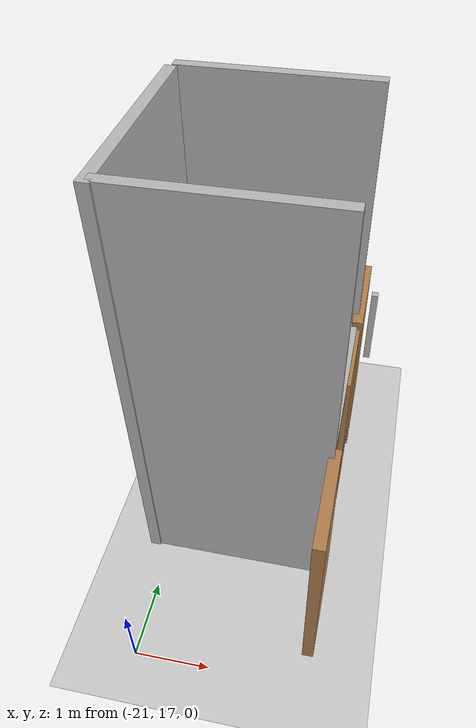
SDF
<sdf version="1.5">
 <world name="default">
  <model name="ground_plane">
   <static>1</static>
   <link name="link">
    <collision name="collision">
     <geometry><plane><normal>0 0 1</normal><size>100 100</size></plane></geometry>
     <surface>
      <contact><collide_bitmask>65535</collide_bitmask></contact>
      <friction><ode><mu>100</mu><mu2>50</mu2></ode></friction>
     </surface>
    </collision>
    <visual name="visual">
     <cast_shadows>0</cast_shadows>
     <geometry><plane><normal>0 0 1</normal><size>100 100</size></plane></geometry>
     <material>
      <script><uri>file://media/materials/scripts/gazebo.material</uri><name>Gazebo/Grey</name></script>
     </material>
    </visual>
   </link>
  </model>
  <model name="elevator">
   <pose>-20 20 0.001 -0 -0 -0</pose>
   <link name="link">
    <inertial>
     <mass>800</mass>
     <inertia><ixx>1</ixx><ixy>0</ixy><ixz>0</ixz><iyy>1</iyy><iyz>0</iyz><izz>1</izz></inertia>
    </inertial>
    <collision name="floor_collision"><geometry><box><size>2.25 2.25 0.005</size></box></geometry></collision>
    <visual name="floor_visual"><geometry><box><size>2.25 2.25 0.005</size></box></geometry></visual>
    <collision name="wall1_collision_bot_in">
     <pose>0.06 0.25 1.125 0 -0 0</pose>
     <geometry><box><size>0.01 0.09 0.36</size></box></geometry>
    </collision>
    <visual name="wall1_visual_bot_in">
     <pose>1 1.25 1.125 0 -0 1.577</pose>
     <geometry><box><size>0.01 0.09 0.36</size></box></geometry>
     <material>
      <script>
       <uri>model://elevator_shaft/materials/scripts</uri>
       <uri>model://elevator_shaft/materials/textures</uri>
       <name>Up_down/Diffuse</name>
      </script>
     </material>
    </visual>
   </link>
   <link name="door">
    <pose>1.0745 -0.5 1.125 0 -0 0</pose>
    <collision name="collision"><geometry><box><size>0.08 1.2 2.25</size></box></geometry></collision>
    <visual name="visual">
     <material>
      <script>
       <uri>model://elevator_door/materials/scripts</uri>
       <uri>model://elevator_door/materials/textures</uri>
       <name>Elevator_door/Picture</name>
      </script>
      <shader type="pixel"><normal_map>__default__</normal_map></shader>
      <ambient>1 1 1 1</ambient>
      <diffuse>1 1 1 1</diffuse>
      <specular>0 0 0 1</specular>
      <emissive>0 0 0 1</emissive>
     </material>
     <geometry><box><size>0.08 1.2 2.25</size></box></geometry>
    </visual>
    <inertial>
     <inertia><ixx>1</ixx><ixy>0</ixy><ixz>0</ixz><iyy>1</iyy><iyz>0</iyz><izz>1</izz></inertia>
     <mass>1</mass>
    </inertial>
   </link>
   <joint name="door" type="prismatic">
    <parent>link</parent>
    <child>door</child>
    <axis>
     <xyz>0 1 0</xyz>
     <limit><lower>0</lower><upper>1.19</upper><effort>0.525</effort></limit>
     <dynamics>
      <damping>1</damping>
      <spring_reference>0</spring_reference>
      <spring_stiffness>0</spring_stiffness>
     </dynamics>
     <use_parent_model_frame>0</use_parent_model_frame>
    </axis>
   </joint>
   <joint name="lift" type="prismatic">
    <parent>world</parent>
    <child>link</child>
    <axis>
     <xyz>0 0 1</xyz>
     <limit><lower>0</lower><upper>10</upper><effort>100000</effort></limit>
     <dynamics>
      <damping>8000</damping>
      <spring_reference>0</spring_reference>
      <spring_stiffness>0</spring_stiffness>
     </dynamics>
     <use_parent_model_frame>0</use_parent_model_frame>
    </axis>
    <physics>
     <ode><implicit_spring_damper>1</implicit_spring_damper><limit><cfm>0</cfm><erp>0.2</erp></limit></ode>
    </physics>
   </joint>
   <plugin name="elevator_plugin" filename="libElevatorPlugin.so">
    <lift_joint>elevator::lift</lift_joint>
    <door_joint>elevator::door</door_joint>
    <floor_height>2.678</floor_height>
    <door_wait_time>20</door_wait_time>
    <topic>~/elevator</topic>
   </plugin>
  </model>
  <model name="elevator_shaft">
   <pose>-20 20 0 0 -0 0</pose>
   <static>1</static>
   <link name="link">
    <collision name="shaft_wall1_collision">
     <pose>0 1.45 3 0 -0 0</pose>
     <geometry><box><size>2.5 0.15 6</size></box></geometry>
    </collision>
    <visual name="shaft_wall1_visual">
     <pose>0 1.45 3 0 -0 0</pose>
     <geometry><box><size>2.5 0.15 6</size></box></geometry>
    </visual>
    <collision name="shaft_wall2_collision">
     <pose>0 -1.25 3 0 -0 0</pose>
     <geometry><box><size>2.5 0.15 6</size></box></geometry>
    </collision>
    <visual name="shaft_wall2_visual">
     <pose>0 -1.25 3 0 -0 0</pose>
     <geometry><box><size>2.5 0.15 6</size></box></geometry>
    </visual>
    <collision name="shaft_wall3_collision">
     <pose>-1.25 0 3 0 -0 0</pose>
     <geometry><box><size>0.15 2.7 6</size></box></geometry>
    </collision>
    <visual name="shaft_wall3_visual">
     <pose>-1.25 0 3 0 -0 0</pose>
     <geometry><box><size>0.15 2.7 6</size></box></geometry>
    </visual>
    <collision name="floor0_collision">
     <pose>1.19 0 0.0005 0 -0 0</pose>
     <geometry><box><size>0.12 2.5 0.001</size></box></geometry>
    </collision>
    <visual name="floor0_visual">
     <pose>1.19 0 0.0005 0 -0 0</pose>
     <geometry><box><size>0.12 2.5 0.001</size></box></geometry>
    </visual>
    <collision name="floor1_collision">
     <pose>1.19 0 2.525 0 -0 0</pose>
     <geometry><box><size>0.12 2.5 0.149</size></box></geometry>
    </collision>
    <visual name="floor1_visual">
     <pose>1.19 0 2.525 0 -0 0</pose>
     <geometry><box><size>0.12 2.5 0.149</size></box></geometry>
    </visual>
   </link>
  </model>
  <model name="elevator_2.675">
   <pose>-18.75 20 0 0 -0 0</pose>
   <link name="Wall_0">
    <collision name="Wall_0_Collision">
     <geometry><box><size>1.4 0.15 2.675</size></box></geometry>
     <pose>0 0 1.3375 0 -0 0</pose>
    </collision>
    <visual name="Wall_0_Visual">
     <pose>0 0 1.3375 0 -0 0</pose>
     <meta><layer>0</layer></meta>
     <geometry><box><size>1.4 0.15 2.675</size></box></geometry>
     <material><script><name>Gazebo/Wood</name><uri>__default__</uri></script></material>
    </visual>
    <pose>0 -1.875 0 0 0 -1.5708</pose>
   </link>
   <pose>0.02 -1.1 1.15 0 -0 0</pose>
   <link name="Wall_2">
    <collision name="Wall_2_Collision">
     <geometry><box><size>1.4 0.15 2.675</size></box></geometry>
     <pose>0 0 1.3375 0 -0 0</pose>
    </collision>
    <visual name="Wall_2_Visual">
     <pose>0 0 1.3375 0 -0 0</pose>
     <geometry><box><size>1.4 0.15 2.675</size></box></geometry>
     <material><script><name>Gazebo/Wood</name><uri>__default__</uri></script></material>
    </visual>
    <pose>0 1.875 0 0 0 -1.5708</pose>
   </link>
   <link name="right_elevator_wall_floor_0">
    <collision name="wall1_collision">
     <pose>0 0.6 1.125 0 -0 0</pose>
     <geometry><box><size>0.1 1.15 2.85</size></box></geometry>
    </collision>
    <visual name="wall1_visual">
     <pose>0 0.6 1.125 0 -0 0</pose>
     <geometry><box><size>0.1 1.15 2.85</size></box></geometry>
     <material><script><name>Gazebo/Wood</name><uri>__default__</uri></script></material>
    </visual>
    <collision name="wall1_collision_bot">
     <pose>0.06 0.3 1.125 0 -0 0</pose>
     <geometry><box><size>0.01 0.09 0.36</size></box></geometry>
    </collision>
    <visual name="wall1_visual_bot">
     <pose>0.06 0.25 1.125 0 -0 0</pose>
     <geometry><box><size>0.01 0.09 0.36</size></box></geometry>
     <material>
      <script>
       <uri>model://elevator_shaft_first_floor/materials/scripts</uri>
       <uri>model://elevator_shaft_first_floor/materials/textures</uri>
       <name>Up_down_first_floor/Diffuse</name>
      </script>
     </material>
    </visual>
   </link>
   <static>1</static>
  </model>
  <model name="stand_for_can">
   <pose>-18.56 20.87 2.912 0 0 0</pose>
   <static>true</static>
   <link name="link">
    <inertial>
     <mass>50.0</mass>
     <inertia><ixx>0.083</ixx><ixy>0.0</ixy><ixz>0.0</ixz><iyy>0.083</iyy><iyz>0.0</iyz><izz>0.083</izz></inertia>
    </inertial>
    <collision name="collision"><geometry><box><size>0.087 0.087 1.1</size></box></geometry></collision>
    <visual name="visual">
     <material>
      <script><uri>file://media/materials/scripts/gazebo.material</uri><name>Gazebo/Tertiary</name></script>
     </material>
     <geometry><box><size>0.087 0.087 1.1</size></box></geometry>
    </visual>
   </link>
  </model>
 </world>
</sdf>
